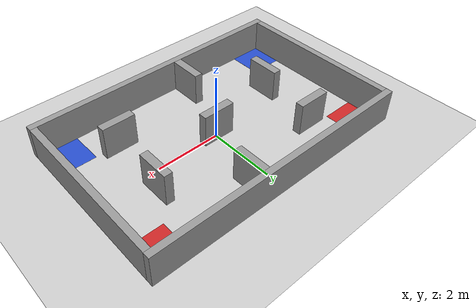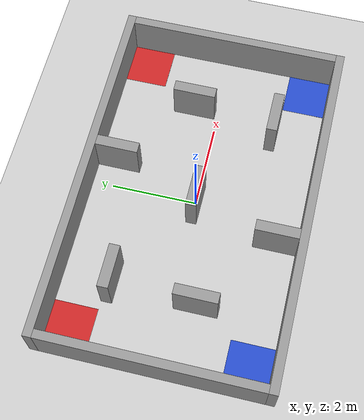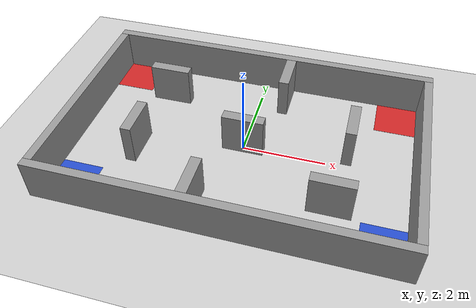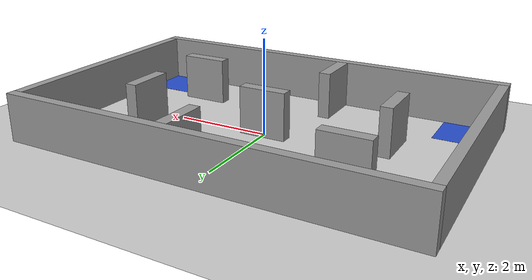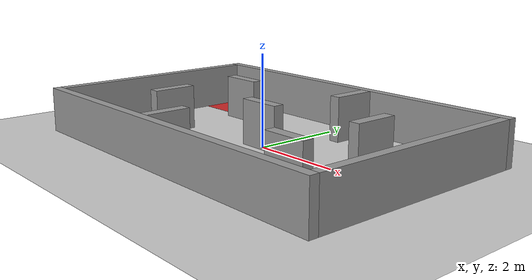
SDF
<sdf version='1.6'>
  <world name='default'>

    <light name='sun' type='directional'>
      <cast_shadows>1</cast_shadows>
      <pose frame=''>0 0 10 0 -0 0</pose>
      <diffuse>0.8 0.8 0.8 1</diffuse>
      <specular>0.2 0.2 0.2 1</specular>
      <attenuation>
        <range>1000</range>
        <constant>0.9</constant>
        <linear>0.01</linear>
        <quadratic>0.001</quadratic>
      </attenuation>
      <direction>-0.5 0.1 -0.9</direction>
    </light>

    <model name="bullet_1">
      <static>0</static>
      <link name='link'>
        <inertial>
          <mass>0.25</mass>
          <inertia>
            <ixx>9e-05</ixx>
            <ixy>0.000000</ixy>
            <ixz>0.000000</ixz>
            <iyy>9e-05</iyy>
            <iyz>0.000000</iyz>
            <izz>9e-05</izz>
          </inertia>
        </inertial>
        <collision name='collision'>
          <geometry>
            <sphere>
              <radius>0.03</radius>
            </sphere>
          </geometry>
          <surface>
            <friction>
              <ode>
                <mu>30.0</mu>
                <mu2>30.0</mu2>
              </ode>
            </friction>
            <contact>
              <ode>
                <kp>1000000.0</kp>
                <kd>100.0</kd>
                <max_vel>1.0</max_vel>
                <min_depth>0.002</min_depth>
              </ode>
            </contact>
          </surface>
        </collision>
        <visual name='visual'>
          <geometry>
            <sphere>
              <radius>0.03</radius>
            </sphere>
          </geometry>
          <material>
            <script>
              <uri>file://media/materials/scripts/gazebo.material</uri>
              <name>Gazebo/Blue</name>
            </script>
          </material>
        </visual>
        <velocity_decay>
          <linear>0.000000</linear>
          <angular>0.000000</angular>
        </velocity_decay>
        <self_collide>0</self_collide>
        <kinematic>0</kinematic>
        <gravity>1</gravity>
      </link>
  </model>

    <model name="bullet_2">
      <static>0</static>
      <link name='link'>
        <inertial>
          <mass>0.25</mass>
          <inertia>
            <ixx>9e-05</ixx>
            <ixy>0.000000</ixy>
            <ixz>0.000000</ixz>
            <iyy>9e-05</iyy>
            <iyz>0.000000</iyz>
            <izz>9e-05</izz>
          </inertia>
        </inertial>
        <collision name='collision'>
          <geometry>
            <sphere>
              <radius>0.03</radius>
            </sphere>
          </geometry>
          <surface>
            <friction>
              <ode>
                <mu>30.0</mu>
                <mu2>30.0</mu2>
              </ode>
            </friction>
            <contact>
              <ode>
                <kp>1000000.0</kp>
                <kd>100.0</kd>
                <max_vel>1.0</max_vel>
                <min_depth>0.002</min_depth>
              </ode>
            </contact>
          </surface>
        </collision>
        <visual name='visual'>
          <geometry>
            <sphere>
              <radius>0.03</radius>
            </sphere>
          </geometry>
          <material>
            <script>
              <uri>file://media/materials/scripts/gazebo.material</uri>
              <name>Gazebo/Blue</name>
            </script>
          </material>
        </visual>
        <velocity_decay>
          <linear>0.000000</linear>
          <angular>0.000000</angular>
        </velocity_decay>
        <self_collide>0</self_collide>
        <kinematic>0</kinematic>
        <gravity>1</gravity>
      </link>
  </model>

    <model name='ground_plane'>
      <static>1</static>
      <link name='link'>
        <collision name='collision'>
          <geometry>
            <plane>
              <normal>0 0 1</normal>
              <size>100 100</size>
            </plane>
          </geometry>
          <surface>
            <friction>
              <ode>
                <mu>100</mu>
                <mu2>50</mu2>
              </ode>
              <torsional>
                <ode/>
              </torsional>
            </friction>
            <contact>
              <ode/>
            </contact>
            <bounce/>
          </surface>
          <max_contacts>10</max_contacts>
        </collision>
        <visual name='visual'>
          <cast_shadows>0</cast_shadows>
          <geometry>
            <plane>
              <normal>0 0 1</normal>
              <size>100 100</size>
            </plane>
          </geometry>
          <material>
            <script>
              <uri>file://media/materials/scripts/gazebo.material</uri>
              <name>Gazebo/Grey</name>
            </script>
          </material>
        </visual>
        <self_collide>0</self_collide>
        <enable_wind>0</enable_wind>
        <kinematic>0</kinematic>
      </link>
    </model>

    <gravity>0 0 -9.8</gravity>
    <magnetic_field>6e-06 2.3e-05 -4.2e-05</magnetic_field>
    <atmosphere type='adiabatic'/>
    <physics name='default_physics' default='0' type='ode'>
      <max_step_size>0.001</max_step_size>
      <real_time_factor>1</real_time_factor>
      <real_time_update_rate>1000</real_time_update_rate>
    </physics>
    <scene>
      <ambient>0.4 0.4 0.4 1</ambient>
      <background>0.7 0.7 0.7 1</background>
      <shadows>1</shadows>
    </scene>
    <audio>
      <device>default</device>
    </audio>
    <wind/>
    <spherical_coordinates>
      <surface_model>EARTH_WGS84</surface_model>
      <latitude_deg>0</latitude_deg>
      <longitude_deg>0</longitude_deg>
      <elevation>0</elevation>
      <heading_deg>0</heading_deg>
    </spherical_coordinates>

    <model name='game_stage'>

      <pose frame=''>0 0 0 0 -0 0</pose>

      <link name='bottom_wall'>

        <collision name='bottom_wall_Collision'>
          <geometry>
            <box>
              <size>8.4 0.2 1</size>
            </box>
          </geometry>
          <pose frame=''>0 0 0.5 0 -0 0</pose>
          <max_contacts>10</max_contacts>
          <surface>
            <contact>
              <ode/>
            </contact>
            <bounce/>
            <friction>
              <torsional>
                <ode/>
              </torsional>
              <ode/>
            </friction>
          </surface>
        </collision>

        <visual name='bottom_wall_Visual'>
          <pose frame=''>0 0 0.5 0 -0 0</pose>
          <geometry>
            <box>
              <size>8.4 0.2 1</size>
            </box>
          </geometry>
          <material>
            <script>
              <uri>file://media/materials/scripts/gazebo.material</uri>
              <name>Gazebo/Grey</name>
            </script>
            <ambient>1 1 1 1</ambient>
          </material>
          <meta>
            <layer>0</layer>
          </meta>
        </visual>

        <pose frame=''>0 -2.6 0 0 -0 0</pose>
        <self_collide>0</self_collide>
        <enable_wind>0</enable_wind>
        <kinematic>0</kinematic>
      </link>

      <link name='right_wall'>

        <collision name='right_wall_Collision'>
          <geometry>
            <box>
              <size>5 0.2 1</size>
            </box>
          </geometry>
          <pose frame=''>0 0 0.5 0 -0 0</pose>
          <max_contacts>10</max_contacts>
          <surface>
            <contact>
              <ode/>
            </contact>
            <bounce/>
            <friction>
              <torsional>
                <ode/>
              </torsional>
              <ode/>
            </friction>
          </surface>
        </collision>

        <visual name='right_wall_Visual'>
          <pose frame=''>0 0 0.5 0 -0 0</pose>
          <geometry>
            <box>
              <size>5 0.2 1</size>
            </box>
          </geometry>
          <material>
            <script>
              <uri>file://media/materials/scripts/gazebo.material</uri>
              <name>Gazebo/Grey</name>
            </script>
            <ambient>1 1 1 1</ambient>
          </material>
          <meta>
            <layer>0</layer>
          </meta>
        </visual>

        <pose frame=''>4.1 0 0 0 -0 1.5708</pose>
        <self_collide>0</self_collide>
        <enable_wind>0</enable_wind>
        <kinematic>0</kinematic>
      </link>

      <link name='top_wall'>

        <collision name='top_wall_Collision'>
          <geometry>
            <box>
              <size>8.4 0.2 1</size>
            </box>
          </geometry>
          <pose frame=''>0 0 0.5 0 -0 0</pose>
          <max_contacts>10</max_contacts>
          <surface>
            <contact>
              <ode/>
            </contact>
            <bounce/>
            <friction>
              <torsional>
                <ode/>
              </torsional>
              <ode/>
            </friction>
          </surface>
        </collision>

        <visual name='top_wall_Visual'>
          <pose frame=''>0 0 0.5 0 -0 0</pose>
          <geometry>
            <box>
              <size>8.4 0.2 1</size>
            </box>
          </geometry>
          <material>
            <script>
              <uri>file://media/materials/scripts/gazebo.material</uri>
              <name>Gazebo/Grey</name>
            </script>
            <ambient>1 1 1 1</ambient>
          </material>
          <meta>
            <layer>0</layer>
          </meta>
        </visual>

        <pose frame=''>0 2.6 0 0 0 0</pose>
        <self_collide>0</self_collide>
        <enable_wind>0</enable_wind>
        <kinematic>0</kinematic>
      </link>

      <link name='left_wall'>

        <collision name='left_wall_Collision'>
          <geometry>
            <box>
              <size>5 0.2 1</size>
            </box>
          </geometry>
          <pose frame=''>0 0 0.5 0 -0 0</pose>
          <max_contacts>10</max_contacts>
          <surface>
            <contact>
              <ode/>
            </contact>
            <bounce/>
            <friction>
              <torsional>
                <ode/>
              </torsional>
              <ode/>
            </friction>
          </surface>
        </collision>

        <visual name='left_wall_Visual'>
          <pose frame=''>0 0 0.5 0 -0 0</pose>
          <geometry>
            <box>
              <size>5 0.2 1</size>
            </box>
          </geometry>
          <material>
            <script>
              <uri>file://media/materials/scripts/gazebo.material</uri>
              <name>Gazebo/Grey</name>
            </script>
            <ambient>1 1 1 1</ambient>
          </material>
          <meta>
            <layer>0</layer>
          </meta>
        </visual>

        <pose frame=''>-4.1 0 0 0 -0 -1.5708</pose>
        <self_collide>0</self_collide>
        <enable_wind>0</enable_wind>
        <kinematic>0</kinematic>
      </link>

      <link name='right_vertical_barrier'>

        <collision name='right_vertical_barrier_Collision'>
          <geometry>
            <box>
              <size>1 0.25 1</size>
            </box>
          </geometry>
          <pose frame=''>0 0 0.5 0 -0 0</pose>
          <max_contacts>10</max_contacts>
          <surface>
            <contact>
              <ode/>
            </contact>
            <bounce/>
            <friction>
              <torsional>
                <ode/>
              </torsional>
              <ode/>
            </friction>
          </surface>
        </collision>

        <visual name='right_vertical_barrier_Visual'>
          <pose frame=''>0 0 0.5 0 -0 0</pose>
          <geometry>
            <box>
              <size>1 0.25 1</size>
            </box>
          </geometry>
          <material>
            <script>
              <uri>file://media/materials/scripts/gazebo.material</uri>
              <name>Gazebo/Grey</name>
            </script>
            <ambient>1 1 1 1</ambient>
          </material>
          <meta>
            <layer>0</layer>
          </meta>
        </visual>

        <pose frame=''>2.475 0.600 0 -0 0 1.5708</pose>
        <self_collide>0</self_collide>
        <enable_wind>0</enable_wind>
        <kinematic>0</kinematic>
      </link>

      <link name='left_vertical_barrier'>

        <collision name='left_vertical_barrier_Collision'>
          <geometry>
            <box>
              <size>1 0.25 1</size>
            </box>
          </geometry>
          <pose frame=''>0 0 0.5 0 -0 0</pose>
          <max_contacts>10</max_contacts>
          <surface>
            <contact>
              <ode/>
            </contact>
            <bounce/>
            <friction>
              <torsional>
                <ode/>
              </torsional>
              <ode/>
            </friction>
          </surface>
        </collision>

        <visual name='left_vertical_barrier_Visual'>
          <pose frame=''>0 0 0.5 0 -0 0</pose>
          <geometry>
            <box>
              <size>1 0.25 1</size>
            </box>
          </geometry>
          <material>
            <script>
              <uri>file://media/materials/scripts/gazebo.material</uri>
              <name>Gazebo/Grey</name>
            </script>
            <ambient>1 1 1 1</ambient>
          </material>
          <meta>
            <layer>0</layer>
          </meta>
        </visual>

        <pose frame=''>-2.475 -0.600 0 0 -0 1.5708</pose>
        <self_collide>0</self_collide>
        <enable_wind>0</enable_wind>
        <kinematic>0</kinematic>
      </link>

      <link name='right_defense_zone_barrier'>

        <collision name='right_defense_zone_barrier_Collision'>
          <geometry>
            <box>
              <size>1 0.25 1</size>
            </box>
          </geometry>
          <pose frame=''>0 0 0.5 0 -0 0</pose>
          <max_contacts>10</max_contacts>
          <surface>
            <contact>
              <ode/>
            </contact>
            <bounce/>
            <friction>
              <torsional>
                <ode/>
              </torsional>
              <ode/>
            </friction>
          </surface>
        </collision>

        <visual name='right_defense_zone_barrier_Visual'>
          <pose frame=''>0 0 0.5 0 -0 0</pose>
          <geometry>
            <box>
              <size>1 0.25 1</size>
            </box>
          </geometry>
          <material>
            <script>
              <uri>file://media/materials/scripts/gazebo.material</uri>
              <name>Gazebo/Grey</name>
            </script>
            <ambient>1 1 1 1</ambient>
          </material>
          <meta>
            <layer>0</layer>
          </meta>
        </visual>

        <pose frame=''>2.300 -1.375 0 0 -0 0</pose>
        <self_collide>0</self_collide>
        <enable_wind>0</enable_wind>
        <kinematic>0</kinematic>
      </link>

      <link name='left_defense_zone_barrier'>

        <collision name='left_defense_zone_barrier_Collision'>
          <geometry>
            <box>
              <size>1 0.25 1</size>
            </box>
          </geometry>
          <pose frame=''>0 0 0.5 0 -0 0</pose>
          <max_contacts>10</max_contacts>
          <surface>
            <contact>
              <ode/>
            </contact>
            <bounce/>
            <friction>
              <torsional>
                <ode/>
              </torsional>
              <ode/>
            </friction>
          </surface>
        </collision>

        <visual name='left_defense_zone_barrier_Visual'>
          <pose frame=''>0 0 0.5 0 -0 0</pose>
          <geometry>
            <box>
              <size>1 0.25 1</size>
            </box>
          </geometry>
          <material>
            <script>
              <uri>file://media/materials/scripts/gazebo.material</uri>
              <name>Gazebo/Grey</name>
            </script>
            <ambient>1 1 1 1</ambient>
          </material>
          <meta>
            <layer>0</layer>
          </meta>
        </visual>

        <pose frame=''>-2.300 +1.375 0 0 -0 0</pose>
        <self_collide>0</self_collide>
        <enable_wind>0</enable_wind>
        <kinematic>0</kinematic>
      </link>

      <link name='middle_wall'>

        <collision name='middle_wall_Collision'>
          <geometry>
            <box>
              <size>1 0.25 1</size>
            </box>
          </geometry>
          <pose frame=''>0 0 0.5 0 -0 0</pose>
          <max_contacts>10</max_contacts>
          <surface>
            <contact>
              <ode/>
            </contact>
            <bounce/>
            <friction>
              <torsional>
                <ode/>
              </torsional>
              <ode/>
            </friction>
          </surface>
        </collision>

        <visual name='middle_wall_Visual'>
          <pose frame=''>0 0 0.5 0 -0 0</pose>
          <geometry>
            <box>
              <size>1 0.25 1</size>
            </box>
          </geometry>
          <material>
            <script>
              <uri>file://media/materials/scripts/gazebo.material</uri>
              <name>Gazebo/Grey</name>
            </script>
            <ambient>1 1 1 1</ambient>
          </material>
          <meta>
            <layer>0</layer>
          </meta>
        </visual>

        <pose frame=''>0 0 0 0 -0 0</pose>
        <self_collide>0</self_collide>
        <enable_wind>0</enable_wind>
        <kinematic>0</kinematic>
      </link>

      <link name='top_ammo_zone_wall'>

        <collision name='top_ammo_zone_wall_Collision'>
          <geometry>
            <box>
              <size>1 0.25 1</size>
            </box>
          </geometry>
          <pose frame=''>0 0 0.5 0 -0 0</pose>
          <max_contacts>10</max_contacts>
          <surface>
            <contact>
              <ode/>
            </contact>
            <bounce/>
            <friction>
              <torsional>
                <ode/>
              </torsional>
              <ode/>
            </friction>
          </surface>
        </collision>

        <visual name='top_ammo_zone_wall_Visual'>
          <pose frame=''>0 0 0.5 0 -0 0</pose>
          <geometry>
            <box>
              <size>1 0.25 1</size>
            </box>
          </geometry>
          <material>
            <script>
              <uri>file://media/materials/scripts/gazebo.material</uri>
              <name>Gazebo/Grey</name>
            </script>
            <ambient>1 1 1 1</ambient>
          </material>
          <meta>
            <layer>0</layer>
          </meta>
        </visual>

        <pose frame=''>0.625 2.000 0 0 -0 -1.5708</pose>
        <self_collide>0</self_collide>
        <enable_wind>0</enable_wind>
        <kinematic>0</kinematic>
      </link>

      <link name='bottom_ammo_zone_wall'>

        <collision name='bottom_ammo_zone_wall_Collision'>
          <geometry>
            <box>
              <size>1 0.25 1</size>
            </box>
          </geometry>
          <pose frame=''>0 0 0.5 0 -0 0</pose>
          <max_contacts>10</max_contacts>
          <surface>
            <contact>
              <ode/>
            </contact>
            <bounce/>
            <friction>
              <torsional>
                <ode/>
              </torsional>
              <ode/>
            </friction>
          </surface>
        </collision>

        <visual name='bottom_ammo_zone_wall_Visual'>
          <pose frame=''>0 0 0.5 0 -0 0</pose>
          <geometry>
            <box>
              <size>1 0.25 1</size>
            </box>
          </geometry>
          <material>
            <script>
              <uri>file://media/materials/scripts/gazebo.material</uri>
              <name>Gazebo/Grey</name>
            </script>
            <ambient>1 1 1 1</ambient>
          </material>
          <meta>
            <layer>0</layer>
          </meta>
        </visual>

        <pose frame=''>-0.625 -2.000 0 0 -0 -1.5708</pose>
        <self_collide>0</self_collide>
        <enable_wind>0</enable_wind>
        <kinematic>0</kinematic>
      </link>

      <link name='start_zone_red1'>
        <visual name='start_zone_red1_visual'>
          <cast_shadows>0</cast_shadows>
          <geometry>
            <plane>
              <normal>0 0 1</normal>
              <size>1 1</size>
            </plane>
          </geometry>
          <material>
            <script>
              <uri>file://media/materials/scripts/gazebo.material</uri>
              <name>Gazebo/Red</name>
            </script>
          </material>
        </visual>

        <pose frame=''>-3.5 2 0.001 0 -0 0</pose>
        <self_collide>0</self_collide>
        <enable_wind>0</enable_wind>
        <kinematic>0</kinematic>

      </link>

      <link name='start_zone_red2'>
        <visual name='start_zone_red2_visual'>
          <cast_shadows>0</cast_shadows>
          <geometry>
            <plane>
              <normal>0 0 1</normal>
              <size>1 1</size>
            </plane>
          </geometry>
          <material>
            <script>
              <uri>file://media/materials/scripts/gazebo.material</uri>
              <name>Gazebo/Red</name>
            </script>
          </material>
        </visual>

        <pose frame=''>3.5 2 0.001 0 -0 0</pose>
        <self_collide>0</self_collide>
        <enable_wind>0</enable_wind>
        <kinematic>0</kinematic>

      </link>

      <link name='start_zone_blue1'>
        <visual name='start_zone_blue1_visual'>
          <cast_shadows>0</cast_shadows>
          <geometry>
            <plane>
              <normal>0 0 1</normal>
              <size>1 1</size>
            </plane>
          </geometry>
          <material>
            <script>
              <uri>file://media/materials/scripts/gazebo.material</uri>
              <name>Gazebo/Blue</name>
            </script>
          </material>
        </visual>

        <pose frame=''>-3.5 -2 0.001 0 -0 0</pose>
        <self_collide>0</self_collide>
        <enable_wind>0</enable_wind>
        <kinematic>0</kinematic>

      </link>

      <link name='start_zone_blue2'>
        <visual name='start_zone_blue2_visual'>
          <cast_shadows>0</cast_shadows>
          <geometry>
            <plane>
              <normal>0 0 1</normal>
              <size>1 1</size>
            </plane>
          </geometry>
          <material>
            <script>
              <uri>file://media/materials/scripts/gazebo.material</uri>
              <name>Gazebo/Blue</name>
            </script>
          </material>
        </visual>

        <pose frame=''>3.5 -2 0.001 0 -0 0</pose>
        <self_collide>0</self_collide>
        <enable_wind>0</enable_wind>
        <kinematic>0</kinematic>

      </link>

      <static>1</static>
    </model>

    <gui fullscreen='0'>
      <camera name='user_camera'>
        <pose frame=''>1.11164 -1.70641 30.8107 -2e-06 1.5698 2.20819</pose>
        <view_controller>orbit</view_controller>
        <projection_type>perspective</projection_type>
      </camera>
    </gui>
  </world>
</sdf>
